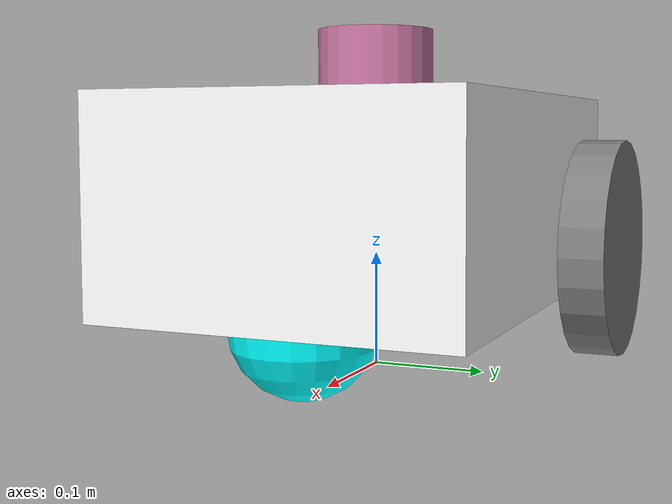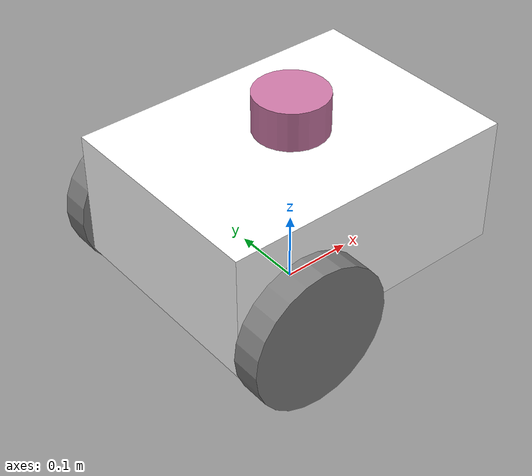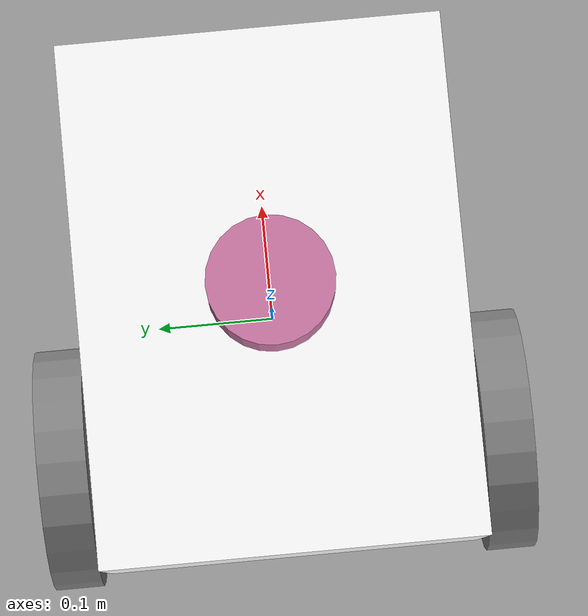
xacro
<?xml version="1.0"?>
<robot xmlns:xacro="http://www.ros.org/wiki/xacro"  name="farover">

    <xacro:include filename="inertial_macros.xacro" />
    <xacro:include filename="farover.urdf.xacro" />
    <xacro:include filename="sensors.urdf.xacro" />
    <xacro:include filename="gazebo_control.xacro" />

</robot>

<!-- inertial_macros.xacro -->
<robot xmlns:xacro="http://www.ros.org/wiki/xacro" name="farover">

    <!-- Specify some standard inertial calculations https://en.wikipedia.org/wiki/List_of_moments_of_inertia -->
    <!-- These make use of xacro's mathematical functionality -->

    <xacro:macro name="box_inertia" params="m w h d">

    <inertial>

      <origin xyz="0 0 0" rpy="${pi/2} 0 ${pi/2}"/>

      <mass value="${m}"/>

      <inertia ixx="${(m/12) * (h*h + d*d)}" ixy="0.0" ixz="0.0" iyy="${(m/12) * (w*w + d*d)}" iyz="0.0" izz="${(m/12) * (w*w + h*h)}"/>

    </inertial>

  </xacro:macro>

  <xacro:macro name="cylinder_inertia" params="m r h">

    <inertial>

      <origin xyz="0 0 0" rpy="${pi/2} 0 0" />

      <mass value="${m}"/>

      <inertia ixx="${(m/12) * (3*r*r + h*h)}" ixy = "0" ixz = "0" iyy="${(m/12) * (3*r*r + h*h)}" iyz = "0" izz="${(m/2) * (r*r)}"/>

    </inertial>

  </xacro:macro>

  <xacro:macro name="sphere_inertia" params="m r">

    <inertial>

      <mass value="${m}"/>

      <inertia ixx="${(2/5) * m * (r*r)}" ixy="0.0" ixz="0.0" iyy="${(2/5) * m * (r*r)}" iyz="0.0" izz="${(2/5) * m * (r*r)}"/>

    </inertial>

  </xacro:macro>

</robot>

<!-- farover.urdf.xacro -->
<robot xmlns:xacro="http://www.ros.org/wiki/xacro" name="farover">

<material name="white">
    <color rgba="1 1 1 1"/>
</material>

<material name="orange">
    <color rgba="1 0.3 0.1 1"/>
</material>

<material name="blue">
    <color rgba="0.2 0.2 1 1"/>
</material>

<material name="black">
    <color rgba="0 0 0 1"/>
</material>

<xacro:property name="base_width" value="0.31"/>

<xacro:property name="base_length" value="0.42"/>

<xacro:property name="base_height" value="0.18"/>

<xacro:property name="wheel_radius" value="0.10"/>

<xacro:property name="wheel_width" value="0.04"/>

<xacro:property name="wheel_ygap" value="0.025"/>

<xacro:property name="wheel_zoff" value="0.05"/>

<xacro:property name="wheel_xoff" value="0.12"/>

<xacro:property name="caster_xoff" value="0.14"/>

<link name="base_link"></link>

<joint name="chassis_joint" type="fixed">
    <parent link="base_link"/>
    <child link="chassis"/>
    <origin xyz="0.0 0.0 ${(wheel_radius+wheel_zoff)}" rpy="0 0 0"/>
</joint>

<link name="chassis">

    <visual>
        <origin xyz="0.0 0.0 0.0" rpy="0 0 0"/>
        <geometry>
            <box size="${base_length} ${base_width} ${base_height}"/>
        </geometry>
        <material name="white"/>
    </visual>

    <collision>
        <origin xyz="0.0 0.0 0.0" rpy="0 0 0"/>
        <geometry>
            <box size="${base_length} ${base_width} ${base_height}"/>
        </geometry>
    </collision>

    <xacro:box_inertia m="15" w="${base_width}" d="${base_length}" h="${base_height}"/>

</link>

<gazebo reference="chassis">
    <material>Gazebo/White</material>
</gazebo>

<!-- Wheels -->

<xacro:macro name="wheel" params="prefix x_reflect y_reflect">

<link name="${prefix}_link">

  <visual>
    <origin xyz="0 0 0" rpy="${pi/2} 0 0"/>

    <geometry>

        <cylinder radius="${wheel_radius}" length="${wheel_width}"/>

    </geometry>

    <material name="Gray">

      <color rgba="0.5 0.5 0.5 1.0"/>

    </material>
  </visual>

  <collision>
    <origin xyz="0 0 0" rpy="${pi/2} 0 0"/>
    <geometry>

      <cylinder radius="${wheel_radius}" length="${wheel_width}"/>

    </geometry>
  </collision>

  <xacro:cylinder_inertia m="0.5" r="${wheel_radius}" h="${wheel_width}"/>

</link>

<joint name="${prefix}_joint" type="continuous">

  <parent link="chassis"/>

  <child link="${prefix}_link"/>

  <origin xyz="${x_reflect*wheel_xoff} ${y_reflect*(base_width/2+wheel_ygap)} ${-wheel_zoff}" rpy="0 0 0"/>

  <axis xyz="0 1 0"/>

</joint>

</xacro:macro>

<xacro:wheel prefix="drivewhl_l" x_reflect="-1" y_reflect="1" />

<xacro:wheel prefix="drivewhl_r" x_reflect="-1" y_reflect="-1" />

<!-- CASTER WHEEL -->

<link name="front_caster">

    <visual>
      <geometry>

        <sphere radius="${(wheel_radius+wheel_zoff-(base_height/2))}"/>

      </geometry>

      <material name="Cyan">

        <color rgba="0 1.0 1.0 1.0"/>

      </material>
    </visual>

    <collision>
        <origin xyz="0 0 0" rpy="0 0 0"/>
        <geometry>

            <sphere radius="${(wheel_radius+wheel_zoff-(base_height/2))}"/>

        </geometry>
    </collision>

    <xacro:sphere_inertia m="0.5" r="${(wheel_radius+wheel_zoff-(base_height/2))}"/>

  </link>

    <gazebo reference="front_caster">
        <material>Gazebo/Black</material>
        <mu1 value="0.001"/>
        <mu2 value="0.001"/>
    </gazebo>

  <joint name="caster_joint" type="fixed">

    <parent link="chassis"/>

    <child link="front_caster"/>

    <origin xyz="${caster_xoff} 0.0 ${-(base_height/2)}" rpy="0 0 0"/>

  </joint>

</robot>

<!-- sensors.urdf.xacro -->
<robot xmlns:xacro="http://www.ros.org/wiki/xacro" name="farover">

    <joint name='imu_joint' type='fixed'>
        <parent link="chassis"/>
        <child link="imu_link"/>
        <origin xyz="0.0 0.0 0.0" rpy="0 0 0"/>
    </joint>

    <link name='imu_link'>
        <origin/>
        <visual name="imu_link_visual">
        <geometry>
            <box size = "0.1 0.1 0.1"/>
        </geometry>
        <material name="Cyan">
            <color rgba="0 1.0 1.0 1.0"/>
        </material>
        </visual>

        <collision name="imu_link_collision">
        <geometry>
            <box size="0.1 0.1 0.1"/>
        </geometry>
        </collision>

        <xacro:box_inertia m="0.1" w="0.1" d="0.1" h="0.1"/>

        <gazebo>
        <sensor name="imu_sensor" type="imu">
        <always_on>true</always_on>
        <update_rate>100</update_rate>
        <visualize>true</visualize>
        <topic>demo/imu</topic>
        <gz_frame_id>imu_link</gz_frame_id>
        <imu>
            <angular_velocity>
            <x>
                <noise type="gaussian">
                <mean>0.0</mean>
                <stddev>2e-4</stddev>
                <bias_mean>0.0000075</bias_mean>
                <bias_stddev>0.0000008</bias_stddev>
                </noise>
            </x>
            <y>
                <noise type="gaussian">
                <mean>0.0</mean>
                <stddev>2e-4</stddev>
                <bias_mean>0.0000075</bias_mean>
                <bias_stddev>0.0000008</bias_stddev>
                </noise>
            </y>
            <z>
                <noise type="gaussian">
                <mean>0.0</mean>
                <stddev>2e-4</stddev>
                <bias_mean>0.0000075</bias_mean>
                <bias_stddev>0.0000008</bias_stddev>
                </noise>
            </z>
            </angular_velocity>
            <linear_acceleration>
            <x>
                <noise type="gaussian">
                <mean>0.0</mean>
                <stddev>1.7e-2</stddev>
                <bias_mean>0.1</bias_mean>
                <bias_stddev>0.001</bias_stddev>
                </noise>
            </x>
            <y>
                <noise type="gaussian">
                <mean>0.0</mean>
                <stddev>1.7e-2</stddev>
                <bias_mean>0.1</bias_mean>
                <bias_stddev>0.001</bias_stddev>
                </noise>
            </y>
            <z>
                <noise type="gaussian">
                <mean>0.0</mean>
                <stddev>1.7e-2</stddev>
                <bias_mean>0.1</bias_mean>
                <bias_stddev>0.001</bias_stddev>
                </noise>
            </z>
            </linear_acceleration>
        </imu>
        </sensor>
    </gazebo>
    </link>

    <link name="lidar_link">
        <inertial>
          <origin xyz="0 0 0" rpy="0 0 0"/>
          <mass value="0.125"/>
          <inertia ixx="0.001"  ixy="0"  ixz="0" iyy="0.001" iyz="0" izz="0.001" />
        </inertial>

        <collision>
          <origin xyz="0 0 0" rpy="0 0 0"/>
          <geometry>
             <cylinder radius="0.0508" length="0.055"/>
          </geometry>
        </collision>

        <visual>
          <origin xyz="0 0 0" rpy="0 0 0"/>
          <geometry>
             <cylinder radius="0.0508" length="0.055"/>
          </geometry>
        </visual>
      </link>

      <joint name="lidar_joint" type="fixed">
        <parent link="chassis"/>
        <child link="lidar_link"/>
        <origin xyz="0 0 0.12" rpy="0 0 0"/>
      </joint>

      <gazebo reference="lidar_link">

        <sensor name="lidar" type="ray">

          <always_on>true</always_on>

          <visualize>true</visualize>

          <update_rate>5</update_rate>

          <ray>

            <scan>

              <horizontal>

                <samples>360</samples>

                <resolution>1.000000</resolution>

                <min_angle>0.000000</min_angle>

                <max_angle>6.280000</max_angle>

              </horizontal>

            </scan>

            <range>

              <min>0.120000</min>

              <max>3.5</max>

              <resolution>0.015000</resolution>

            </range>

            <noise>

              <type>gaussian</type>

              <mean>0.0</mean>

              <stddev>0.01</stddev>

            </noise>

          </ray>

          <plugin name="scan" filename="libgazebo_ros_ray_sensor.so">

            <ros>

              <remapping>~/out:=scan</remapping>

            </ros>

            <output_type>sensor_msgs/LaserScan</output_type>

            <frame_name>lidar_link</frame_name>

          </plugin>

        </sensor>

      </gazebo>

</robot>
